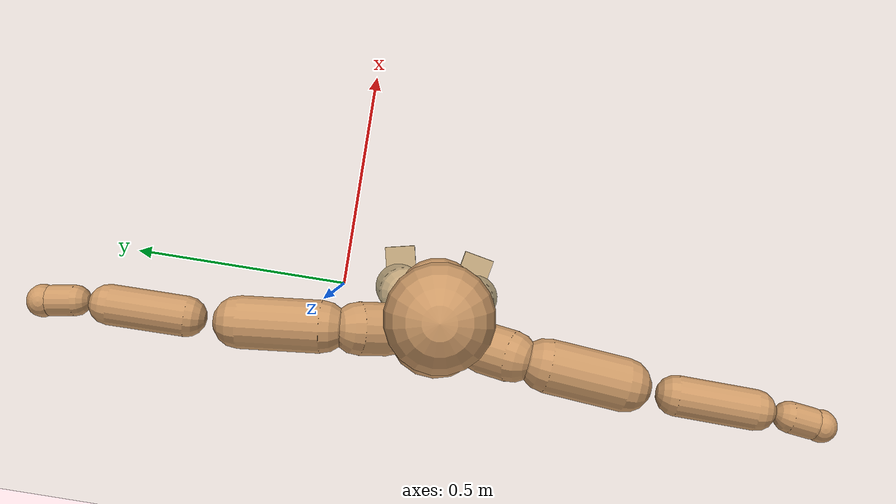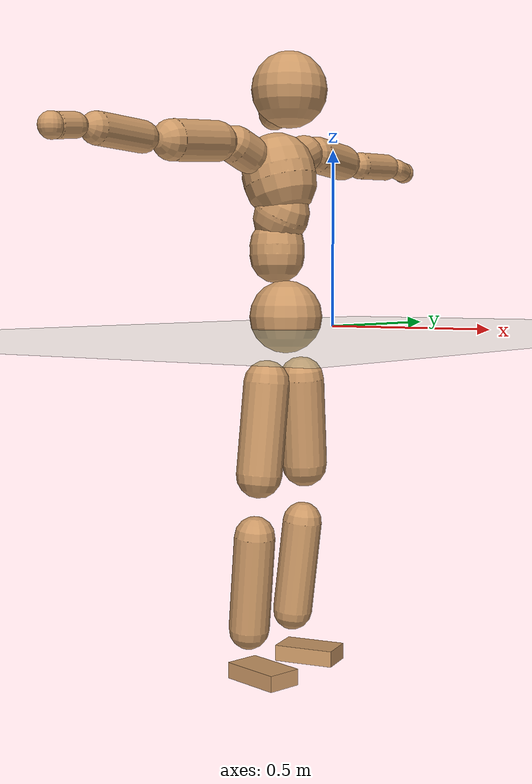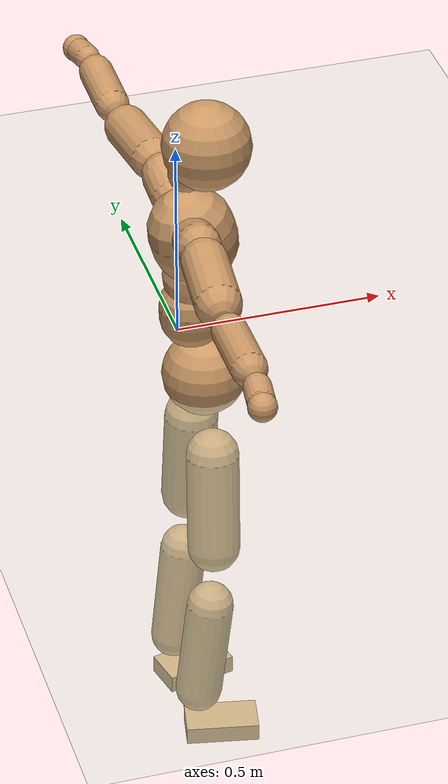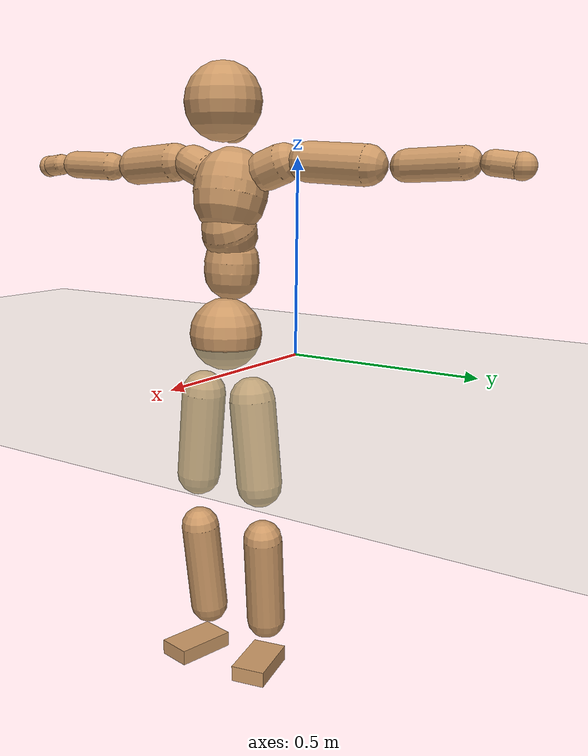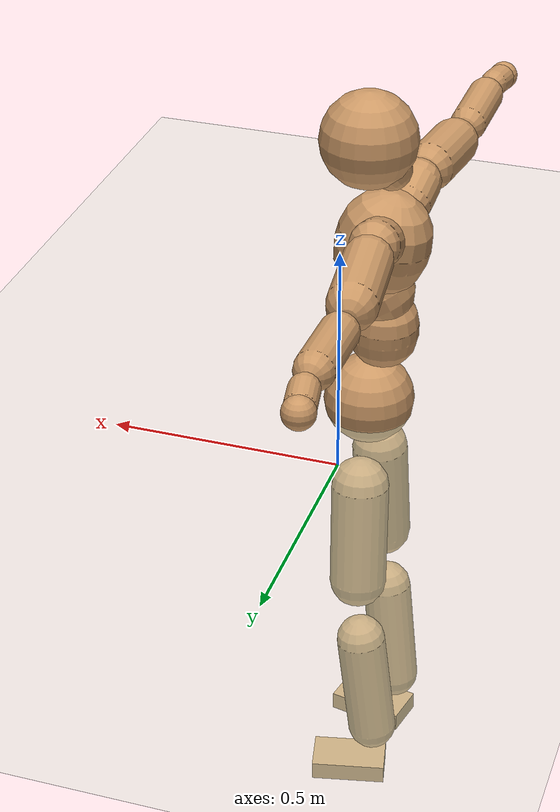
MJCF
<mujoco model="humanoid">
  <compiler coordinate="local" angle="radian"/>
  <default>
    <joint damping="0.0" armature="0.01" stiffness="0.0" limited="true"/>
    <geom conaffinity="1" condim="3" contype="7" margin="0.001" rgba="0.8 0.6 .4 1"/>
  </default>
  <asset>
    <texture type="skybox" builtin="gradient" rgb1=".4 .5 .6" rgb2="0 0 0" width="100" height="100"/>
    <texture builtin="flat" height="1278" mark="cross" markrgb="1 1 1" name="texgeom" random="0.01" rgb1="0.8 0.6 0.4" rgb2="0.8 0.6 0.4" type="cube" width="127"/>
    <texture builtin="checker" height="100" name="texplane" rgb1="0 0 0" rgb2="0.8 0.8 0.8" type="2d" width="100"/>
    <material name="MatPlane" reflectance="0.5" shininess="1" specular="1" texrepeat="60 60" texture="texplane"/>
    <material name="geom" texture="texgeom" texuniform="true"/>
  </asset>
  <worldbody>
    <light cutoff="100" diffuse="1 1 1" dir="-0 0 -1.3" directional="true" exponent="1" pos="0 0 1.3" specular=".1 .1 .1"/>
    <geom conaffinity="1" condim="3" name="floor" pos="0 0 0" rgba="0.8 0.9 0.8 1" size="100 100 .2" type="plane" material="MatPlane"/>
    <body name="Pelvis" pos="-0.0004 -0.2276 0.0318">
      <freejoint name="Pelvis"/>
      <geom type="sphere" contype="1" conaffinity="1" density="500" size="0.0991" pos="0.0000 0.0000 0.0000" name="Pelvis"/>
      <body name="L_Hip" pos="-0.0063 0.0766 -0.0957">
        <joint name="L_Hip_x" type="hinge" pos="0 0 0" axis="1 0 0" stiffness="800" damping="80" armature="0.02" range="-180.0000 180.0000"/>
        <joint name="L_Hip_y" type="hinge" pos="0 0 0" axis="0 1 0" stiffness="800" damping="80" armature="0.02" range="-180.0000 180.0000"/>
        <joint name="L_Hip_z" type="hinge" pos="0 0 0" axis="0 0 1" stiffness="800" damping="80" armature="0.02" range="-180.0000 180.0000"/>
        <geom type="capsule" contype="1" conaffinity="1" density="500" fromto="-0.0014 0.0071 -0.0802 -0.0058 0.0286 -0.3209" size="0.0633" name="L_Hip"/>
        <body name="L_Knee" pos="-0.0072 0.0357 -0.4011">
          <joint name="L_Knee_x" type="hinge" pos="0 0 0" axis="1 0 0" stiffness="800" damping="80" armature="0.02" range="-180.0000 180.0000"/>
          <joint name="L_Knee_y" type="hinge" pos="0 0 0" axis="0 1 0" stiffness="800" damping="80" armature="0.02" range="-180.0000 180.0000"/>
          <joint name="L_Knee_z" type="hinge" pos="0 0 0" axis="0 0 1" stiffness="800" damping="80" armature="0.02" range="-180.0000 180.0000"/>
          <geom type="capsule" contype="1" conaffinity="1" density="500" fromto="-0.0095 -0.0025 -0.0856 -0.0381 -0.0099 -0.3423" size="0.0552" name="L_Knee"/>
          <body name="L_Ankle" pos="-0.0476 -0.0124 -0.4279">
            <joint name="L_Ankle_x" type="hinge" pos="0 0 0" axis="1 0 0" stiffness="800" damping="80" armature="0.02" range="-180.0000 180.0000"/>
            <joint name="L_Ankle_y" type="hinge" pos="0 0 0" axis="0 1 0" stiffness="800" damping="80" armature="0.02" range="-180.0000 180.0000"/>
            <joint name="L_Ankle_z" type="hinge" pos="0 0 0" axis="0 0 1" stiffness="800" damping="80" armature="0.02" range="-180.0000 180.0000"/>
            <geom type="box" contype="1" conaffinity="1" density="500" pos="0.0607 0.0135 -0.0306" size="0.0846 0.0481 0.022" quat="0.9940 0.0000 0.0000 0.1091" name="L_Ankle"/>
            <body name="L_Toe" pos="0.1214 0.027 -0.0611">
              <joint name="L_Toe_x" type="hinge" pos="0 0 0" axis="1 0 0" stiffness="500" damping="50" armature="0.02" range="-180.0000 180.0000"/>
              <joint name="L_Toe_y" type="hinge" pos="0 0 0" axis="0 1 0" stiffness="500" damping="50" armature="0.02" range="-180.0000 180.0000"/>
              <joint name="L_Toe_z" type="hinge" pos="0 0 0" axis="0 0 1" stiffness="500" damping="50" armature="0.02" range="-180.0000 180.0000"/>
              <geom type="box" contype="1" conaffinity="1" density="500" pos="0.0000 0.0000 0.0305" size="0.001 0.0024 0.0011" quat="0.9934 0.0000 0.0000 0.1150" name="L_Toe"/>
            </body>
          </body>
        </body>
      </body>
      <body name="R_Hip" pos="-0.0022 -0.0736 -0.0952">
        <joint name="R_Hip_x" type="hinge" pos="0 0 0" axis="1 0 0" stiffness="800" damping="80" armature="0.02" range="-180.0000 180.0000"/>
        <joint name="R_Hip_y" type="hinge" pos="0 0 0" axis="0 1 0" stiffness="800" damping="80" armature="0.02" range="-180.0000 180.0000"/>
        <joint name="R_Hip_z" type="hinge" pos="0 0 0" axis="0 0 1" stiffness="800" damping="80" armature="0.02" range="-180.0000 180.0000"/>
        <geom type="capsule" contype="1" conaffinity="1" density="500" fromto="-0.0019 -0.0087 -0.0819 -0.0076 -0.0347 -0.3275" size="0.0624" name="R_Hip"/>
        <body name="R_Knee" pos="-0.0095 -0.0434 -0.4094">
          <joint name="R_Knee_x" type="hinge" pos="0 0 0" axis="1 0 0" stiffness="800" damping="80" armature="0.02" range="-180.0000 180.0000"/>
          <joint name="R_Knee_y" type="hinge" pos="0 0 0" axis="0 1 0" stiffness="800" damping="80" armature="0.02" range="-180.0000 180.0000"/>
          <joint name="R_Knee_z" type="hinge" pos="0 0 0" axis="0 0 1" stiffness="800" damping="80" armature="0.02" range="-180.0000 180.0000"/>
          <geom type="capsule" contype="1" conaffinity="1" density="500" fromto="-0.0091 0.0031 -0.0859 -0.0363 0.0125 -0.3435" size="0.0555" name="R_Knee"/>
          <body name="R_Ankle" pos="-0.0454 0.0156 -0.4294">
            <joint name="R_Ankle_x" type="hinge" pos="0 0 0" axis="1 0 0" stiffness="800" damping="80" armature="0.02" range="-180.0000 180.0000"/>
            <joint name="R_Ankle_y" type="hinge" pos="0 0 0" axis="0 1 0" stiffness="800" damping="80" armature="0.02" range="-180.0000 180.0000"/>
            <joint name="R_Ankle_z" type="hinge" pos="0 0 0" axis="0 0 1" stiffness="800" damping="80" armature="0.02" range="-180.0000 180.0000"/>
            <geom type="box" contype="1" conaffinity="1" density="500" pos="0.0628 -0.0124 -0.0262" size="0.0871 0.0483 0.0217" quat="0.9952 0.0000 0.0000 -0.0974" name="R_Ankle"/>
            <body name="R_Toe" pos="0.1256 -0.0248 -0.0523">
              <joint name="R_Toe_x" type="hinge" pos="0 0 0" axis="1 0 0" stiffness="500" damping="50" armature="0.02" range="-180.0000 180.0000"/>
              <joint name="R_Toe_y" type="hinge" pos="0 0 0" axis="0 1 0" stiffness="500" damping="50" armature="0.02" range="-180.0000 180.0000"/>
              <joint name="R_Toe_z" type="hinge" pos="0 0 0" axis="0 0 1" stiffness="500" damping="50" armature="0.02" range="-180.0000 180.0000"/>
              <geom type="box" contype="1" conaffinity="1" density="500" pos="0.0000 0.0000 0.0288" size="0.0009 0.0024 0.0012" quat="0.9961 0.0000 0.0000 -0.0884" name="R_Toe"/>
            </body>
          </body>
        </body>
      </body>
      <body name="Torso" pos="-0.027 -0.003 0.1111">
        <joint name="Torso_x" type="hinge" pos="0 0 0" axis="1 0 0" stiffness="1000" damping="100" armature="0.02" range="-180.0000 180.0000"/>
        <joint name="Torso_y" type="hinge" pos="0 0 0" axis="0 1 0" stiffness="1000" damping="100" armature="0.02" range="-180.0000 180.0000"/>
        <joint name="Torso_z" type="hinge" pos="0 0 0" axis="0 0 1" stiffness="1000" damping="100" armature="0.02" range="-180.0000 180.0000"/>
        <geom type="capsule" contype="1" conaffinity="1" density="500" fromto="-0.0022 0.0026 0.0821 -0.0015 0.0018 0.0547" size="0.0752" name="Torso"/>
        <body name="Spine" pos="-0.0037 0.0044 0.1368">
          <joint name="Spine_x" type="hinge" pos="0 0 0" axis="1 0 0" stiffness="1000" damping="100" armature="0.02" range="-180.0000 180.0000"/>
          <joint name="Spine_y" type="hinge" pos="0 0 0" axis="0 1 0" stiffness="1000" damping="100" armature="0.02" range="-180.0000 180.0000"/>
          <joint name="Spine_z" type="hinge" pos="0 0 0" axis="0 0 1" stiffness="1000" damping="100" armature="0.02" range="-180.0000 180.0000"/>
          <geom type="capsule" contype="1" conaffinity="1" density="500" fromto="0.0175 0.0005 0.0324 0.0117 0.0003 0.0216" size="0.0758" name="Spine"/>
          <body name="Chest" pos="0.0292 0.0009 0.0539">
            <joint name="Chest_x" type="hinge" pos="0 0 0" axis="1 0 0" stiffness="1000" damping="100" armature="0.02" range="-180.0000 180.0000"/>
            <joint name="Chest_y" type="hinge" pos="0 0 0" axis="0 1 0" stiffness="1000" damping="100" armature="0.02" range="-180.0000 180.0000"/>
            <joint name="Chest_z" type="hinge" pos="0 0 0" axis="0 0 1" stiffness="1000" damping="100" armature="0.02" range="-180.0000 180.0000"/>
            <geom type="capsule" contype="1" conaffinity="1" density="500" fromto="-0.0263 -0.0012 0.0965 -0.0175 -0.0008 0.0643" size="0.1006" name="Chest"/>
            <body name="Neck" pos="-0.0474 -0.004 0.2322">
              <joint name="Neck_x" type="hinge" pos="0 0 0" axis="1 0 0" stiffness="500" damping="50" armature="0.02" range="-180.0000 180.0000"/>
              <joint name="Neck_y" type="hinge" pos="0 0 0" axis="0 1 0" stiffness="500" damping="50" armature="0.02" range="-180.0000 180.0000"/>
              <joint name="Neck_z" type="hinge" pos="0 0 0" axis="0 0 1" stiffness="500" damping="50" armature="0.02" range="-180.0000 180.0000"/>
              <geom type="capsule" contype="1" conaffinity="1" density="500" fromto="0.0118 0.0009 0.0153 0.0473 0.0035 0.0612" size="0.0434" name="Neck"/>
              <body name="Head" pos="0.0591 0.0044 0.0765">
                <joint name="Head_x" type="hinge" pos="0 0 0" axis="1 0 0" stiffness="500" damping="50" armature="0.02" range="-180.0000 180.0000"/>
                <joint name="Head_y" type="hinge" pos="0 0 0" axis="0 1 0" stiffness="500" damping="50" armature="0.02" range="-180.0000 180.0000"/>
                <joint name="Head_z" type="hinge" pos="0 0 0" axis="0 0 1" stiffness="500" damping="50" armature="0.02" range="-180.0000 180.0000"/>
                <geom type="sphere" contype="1" conaffinity="1" density="500" size="0.1028" pos="0.0000 0.0000 0.0000" name="Head"/>
              </body>
            </body>
            <body name="L_Thorax" pos="-0.0393 0.0792 0.1262">
              <joint name="L_Thorax_x" type="hinge" pos="0 0 0" axis="1 0 0" stiffness="500" damping="50" armature="0.02" range="-180.0000 180.0000"/>
              <joint name="L_Thorax_y" type="hinge" pos="0 0 0" axis="0 1 0" stiffness="500" damping="50" armature="0.02" range="-180.0000 180.0000"/>
              <joint name="L_Thorax_z" type="hinge" pos="0 0 0" axis="0 0 1" stiffness="500" damping="50" armature="0.02" range="-180.0000 180.0000"/>
              <geom type="capsule" contype="1" conaffinity="1" density="500" fromto="-0.0016 0.0175 0.0067 -0.0065 0.0701 0.0266" size="0.0527" name="L_Thorax"/>
              <body name="L_Shoulder" pos="-0.0082 0.0877 0.0333">
                <joint name="L_Shoulder_x" type="hinge" pos="0 0 0" axis="1 0 0" stiffness="500" damping="50" armature="0.02" range="-720.0000 720.0000"/>
                <joint name="L_Shoulder_y" type="hinge" pos="0 0 0" axis="0 1 0" stiffness="500" damping="50" armature="0.02" range="-720.0000 720.0000"/>
                <joint name="L_Shoulder_z" type="hinge" pos="0 0 0" axis="0 0 1" stiffness="500" damping="50" armature="0.02" range="-720.0000 720.0000"/>
                <geom type="capsule" contype="1" conaffinity="1" density="500" fromto="-0.0058 0.0537 -0.0030 -0.0230 0.2150 -0.0121" size="0.0521" name="L_Shoulder"/>
                <body name="L_Elbow" pos="-0.0288 0.2687 -0.0151">
                  <joint name="L_Elbow_x" type="hinge" pos="0 0 0" axis="1 0 0" stiffness="500" damping="50" armature="0.02" range="-720.0000 720.0000"/>
                  <joint name="L_Elbow_y" type="hinge" pos="0 0 0" axis="0 1 0" stiffness="500" damping="50" armature="0.02" range="-720.0000 720.0000"/>
                  <joint name="L_Elbow_z" type="hinge" pos="0 0 0" axis="0 0 1" stiffness="500" damping="50" armature="0.02" range="-720.0000 720.0000"/>
                  <geom type="capsule" contype="1" conaffinity="1" density="500" fromto="0.0000 0.0501 0.0021 0.0000 0.2003 0.0082" size="0.0402" name="L_Elbow"/>
                  <body name="L_Wrist" pos="0 0.2504 0.0103">
                    <joint name="L_Wrist_x" type="hinge" pos="0 0 0" axis="1 0 0" stiffness="300" damping="30" armature="0.02" range="-180.0000 180.0000"/>
                    <joint name="L_Wrist_y" type="hinge" pos="0 0 0" axis="0 1 0" stiffness="300" damping="30" armature="0.02" range="-180.0000 180.0000"/>
                    <joint name="L_Wrist_z" type="hinge" pos="0 0 0" axis="0 0 1" stiffness="300" damping="30" armature="0.02" range="-180.0000 180.0000"/>
                    <geom type="capsule" contype="1" conaffinity="1" density="500" fromto="-0.0027 0.0162 -0.0020 -0.0107 0.0647 -0.0079" size="0.0306" name="L_Wrist"/>
                    <body name="L_Hand" pos="-0.0134 0.0809 -0.0099">
                      <joint name="L_Hand_x" type="hinge" pos="0 0 0" axis="1 0 0" stiffness="300" damping="30" armature="0.02" range="-180.0000 180.0000"/>
                      <joint name="L_Hand_y" type="hinge" pos="0 0 0" axis="0 1 0" stiffness="300" damping="30" armature="0.02" range="-180.0000 180.0000"/>
                      <joint name="L_Hand_z" type="hinge" pos="0 0 0" axis="0 0 1" stiffness="300" damping="30" armature="0.02" range="-180.0000 180.0000"/>
                      <geom type="sphere" contype="1" conaffinity="1" density="500" size="0.0326" pos="0.0000 0.0000 0.0000" name="L_Hand"/>
                    </body>
                  </body>
                </body>
              </body>
            </body>
            <body name="R_Thorax" pos="-0.0448 -0.0814 0.1241">
              <joint name="R_Thorax_x" type="hinge" pos="0 0 0" axis="1 0 0" stiffness="500" damping="50" armature="0.02" range="-180.0000 180.0000"/>
              <joint name="R_Thorax_y" type="hinge" pos="0 0 0" axis="0 1 0" stiffness="500" damping="50" armature="0.02" range="-180.0000 180.0000"/>
              <joint name="R_Thorax_z" type="hinge" pos="0 0 0" axis="0 0 1" stiffness="500" damping="50" armature="0.02" range="-180.0000 180.0000"/>
              <geom type="capsule" contype="1" conaffinity="1" density="500" fromto="-0.0019 -0.0179 0.0071 -0.0075 -0.0718 0.0283" size="0.0512" name="R_Thorax"/>
              <body name="R_Shoulder" pos="-0.0093 -0.0897 0.0354">
                <joint name="R_Shoulder_x" type="hinge" pos="0 0 0" axis="1 0 0" stiffness="500" damping="50" armature="0.02" range="-720.0000 720.0000"/>
                <joint name="R_Shoulder_y" type="hinge" pos="0 0 0" axis="0 1 0" stiffness="500" damping="50" armature="0.02" range="-720.0000 720.0000"/>
                <joint name="R_Shoulder_z" type="hinge" pos="0 0 0" axis="0 0 1" stiffness="500" damping="50" armature="0.02" range="-720.0000 720.0000"/>
                <geom type="capsule" contype="1" conaffinity="1" density="500" fromto="-0.0048 -0.0522 -0.0033 -0.0191 -0.2088 -0.0133" size="0.0535" name="R_Shoulder"/>
                <body name="R_Elbow" pos="-0.0238 -0.261 -0.0166">
                  <joint name="R_Elbow_x" type="hinge" pos="0 0 0" axis="1 0 0" stiffness="500" damping="50" armature="0.02" range="-720.0000 720.0000"/>
                  <joint name="R_Elbow_y" type="hinge" pos="0 0 0" axis="0 1 0" stiffness="500" damping="50" armature="0.02" range="-720.0000 720.0000"/>
                  <joint name="R_Elbow_z" type="hinge" pos="0 0 0" axis="0 0 1" stiffness="500" damping="50" armature="0.02" range="-720.0000 720.0000"/>
                  <geom type="capsule" contype="1" conaffinity="1" density="500" fromto="-0.0008 -0.0516 0.0020 -0.0032 -0.2063 0.0080" size="0.0405" name="R_Elbow"/>
                  <body name="R_Wrist" pos="-0.0041 -0.2579 0.0099">
                    <joint name="R_Wrist_x" type="hinge" pos="0 0 0" axis="1 0 0" stiffness="300" damping="30" armature="0.02" range="-180.0000 180.0000"/>
                    <joint name="R_Wrist_y" type="hinge" pos="0 0 0" axis="0 1 0" stiffness="300" damping="30" armature="0.02" range="-180.0000 180.0000"/>
                    <joint name="R_Wrist_z" type="hinge" pos="0 0 0" axis="0 0 1" stiffness="300" damping="30" armature="0.02" range="-180.0000 180.0000"/>
                    <geom type="capsule" contype="1" conaffinity="1" density="500" fromto="-0.0021 -0.0162 -0.0015 -0.0083 -0.0649 -0.0059" size="0.0312" name="R_Wrist"/>
                    <body name="R_Hand" pos="-0.0104 -0.0811 -0.0073">
                      <joint name="R_Hand_x" type="hinge" pos="0 0 0" axis="1 0 0" stiffness="300" damping="30" armature="0.02" range="-180.0000 180.0000"/>
                      <joint name="R_Hand_y" type="hinge" pos="0 0 0" axis="0 1 0" stiffness="300" damping="30" armature="0.02" range="-180.0000 180.0000"/>
                      <joint name="R_Hand_z" type="hinge" pos="0 0 0" axis="0 0 1" stiffness="300" damping="30" armature="0.02" range="-180.0000 180.0000"/>
                      <geom type="sphere" contype="1" conaffinity="1" density="500" size="0.0326" pos="0.0000 0.0000 0.0000" name="R_Hand"/>
                    </body>
                  </body>
                </body>
              </body>
            </body>
          </body>
        </body>
      </body>
    </body>
  </worldbody>
  <actuator>
    <motor name="L_Hip_x" joint="L_Hip_x" gear="500"/>
    <motor name="L_Hip_y" joint="L_Hip_y" gear="500"/>
    <motor name="L_Hip_z" joint="L_Hip_z" gear="500"/>
    <motor name="L_Knee_x" joint="L_Knee_x" gear="500"/>
    <motor name="L_Knee_y" joint="L_Knee_y" gear="500"/>
    <motor name="L_Knee_z" joint="L_Knee_z" gear="500"/>
    <motor name="L_Ankle_x" joint="L_Ankle_x" gear="500"/>
    <motor name="L_Ankle_y" joint="L_Ankle_y" gear="500"/>
    <motor name="L_Ankle_z" joint="L_Ankle_z" gear="500"/>
    <motor name="L_Toe_x" joint="L_Toe_x" gear="500"/>
    <motor name="L_Toe_y" joint="L_Toe_y" gear="500"/>
    <motor name="L_Toe_z" joint="L_Toe_z" gear="500"/>
    <motor name="R_Hip_x" joint="R_Hip_x" gear="500"/>
    <motor name="R_Hip_y" joint="R_Hip_y" gear="500"/>
    <motor name="R_Hip_z" joint="R_Hip_z" gear="500"/>
    <motor name="R_Knee_x" joint="R_Knee_x" gear="500"/>
    <motor name="R_Knee_y" joint="R_Knee_y" gear="500"/>
    <motor name="R_Knee_z" joint="R_Knee_z" gear="500"/>
    <motor name="R_Ankle_x" joint="R_Ankle_x" gear="500"/>
    <motor name="R_Ankle_y" joint="R_Ankle_y" gear="500"/>
    <motor name="R_Ankle_z" joint="R_Ankle_z" gear="500"/>
    <motor name="R_Toe_x" joint="R_Toe_x" gear="500"/>
    <motor name="R_Toe_y" joint="R_Toe_y" gear="500"/>
    <motor name="R_Toe_z" joint="R_Toe_z" gear="500"/>
    <motor name="Torso_x" joint="Torso_x" gear="500"/>
    <motor name="Torso_y" joint="Torso_y" gear="500"/>
    <motor name="Torso_z" joint="Torso_z" gear="500"/>
    <motor name="Spine_x" joint="Spine_x" gear="500"/>
    <motor name="Spine_y" joint="Spine_y" gear="500"/>
    <motor name="Spine_z" joint="Spine_z" gear="500"/>
    <motor name="Chest_x" joint="Chest_x" gear="500"/>
    <motor name="Chest_y" joint="Chest_y" gear="500"/>
    <motor name="Chest_z" joint="Chest_z" gear="500"/>
    <motor name="Neck_x" joint="Neck_x" gear="500"/>
    <motor name="Neck_y" joint="Neck_y" gear="500"/>
    <motor name="Neck_z" joint="Neck_z" gear="500"/>
    <motor name="Head_x" joint="Head_x" gear="500"/>
    <motor name="Head_y" joint="Head_y" gear="500"/>
    <motor name="Head_z" joint="Head_z" gear="500"/>
    <motor name="L_Thorax_x" joint="L_Thorax_x" gear="500"/>
    <motor name="L_Thorax_y" joint="L_Thorax_y" gear="500"/>
    <motor name="L_Thorax_z" joint="L_Thorax_z" gear="500"/>
    <motor name="L_Shoulder_x" joint="L_Shoulder_x" gear="500"/>
    <motor name="L_Shoulder_y" joint="L_Shoulder_y" gear="500"/>
    <motor name="L_Shoulder_z" joint="L_Shoulder_z" gear="500"/>
    <motor name="L_Elbow_x" joint="L_Elbow_x" gear="500"/>
    <motor name="L_Elbow_y" joint="L_Elbow_y" gear="500"/>
    <motor name="L_Elbow_z" joint="L_Elbow_z" gear="500"/>
    <motor name="L_Wrist_x" joint="L_Wrist_x" gear="500"/>
    <motor name="L_Wrist_y" joint="L_Wrist_y" gear="500"/>
    <motor name="L_Wrist_z" joint="L_Wrist_z" gear="500"/>
    <motor name="L_Hand_x" joint="L_Hand_x" gear="500"/>
    <motor name="L_Hand_y" joint="L_Hand_y" gear="500"/>
    <motor name="L_Hand_z" joint="L_Hand_z" gear="500"/>
    <motor name="R_Thorax_x" joint="R_Thorax_x" gear="500"/>
    <motor name="R_Thorax_y" joint="R_Thorax_y" gear="500"/>
    <motor name="R_Thorax_z" joint="R_Thorax_z" gear="500"/>
    <motor name="R_Shoulder_x" joint="R_Shoulder_x" gear="500"/>
    <motor name="R_Shoulder_y" joint="R_Shoulder_y" gear="500"/>
    <motor name="R_Shoulder_z" joint="R_Shoulder_z" gear="500"/>
    <motor name="R_Elbow_x" joint="R_Elbow_x" gear="500"/>
    <motor name="R_Elbow_y" joint="R_Elbow_y" gear="500"/>
    <motor name="R_Elbow_z" joint="R_Elbow_z" gear="500"/>
    <motor name="R_Wrist_x" joint="R_Wrist_x" gear="500"/>
    <motor name="R_Wrist_y" joint="R_Wrist_y" gear="500"/>
    <motor name="R_Wrist_z" joint="R_Wrist_z" gear="500"/>
    <motor name="R_Hand_x" joint="R_Hand_x" gear="500"/>
    <motor name="R_Hand_y" joint="R_Hand_y" gear="500"/>
    <motor name="R_Hand_z" joint="R_Hand_z" gear="500"/>
  </actuator>
  <contact>
    <exclude body1="Torso" body2="Chest"/>
    <exclude body1="Head" body2="Chest"/>
    <exclude body1="R_Knee" body2="R_Toe"/>
    <exclude body1="R_Knee" body2="L_Ankle"/>
    <exclude body1="R_Knee" body2="L_Toe"/>
    <exclude body1="L_Knee" body2="L_Toe"/>
    <exclude body1="L_Knee" body2="R_Ankle"/>
    <exclude body1="L_Knee" body2="R_Toe"/>
    <exclude body1="L_Shoulder" body2="Chest"/>
    <exclude body1="R_Shoulder" body2="Chest"/>
  </contact>
  <sensor/>
  <size njmax="700" nconmax="700"/>
</mujoco>
